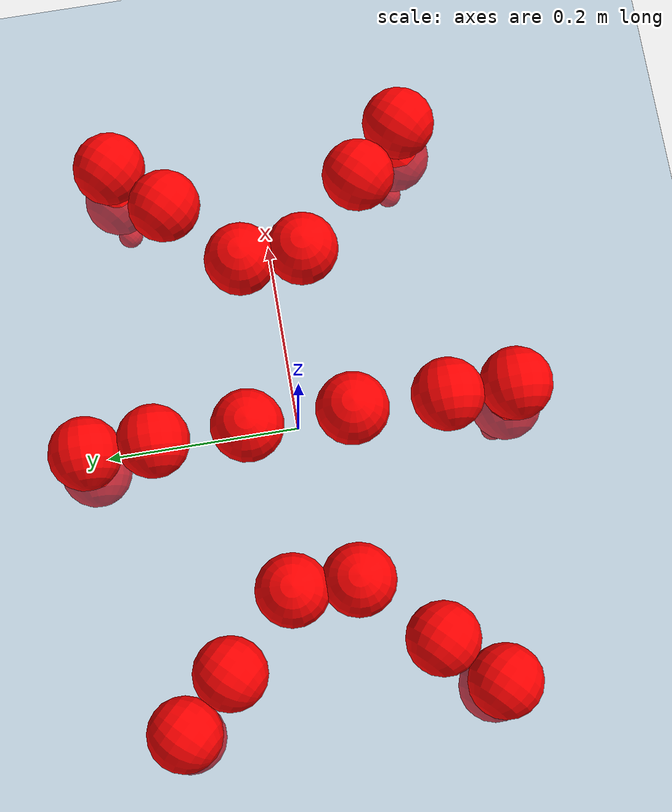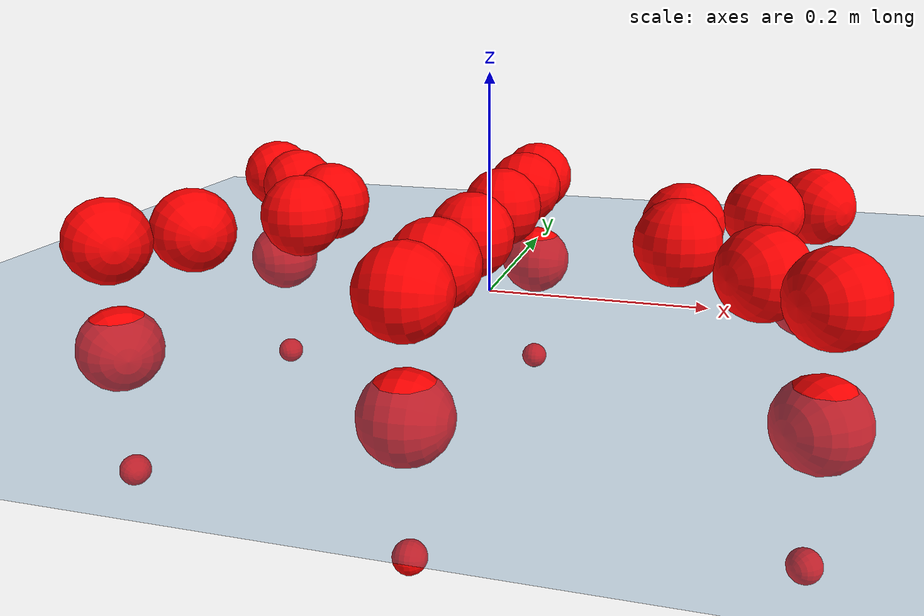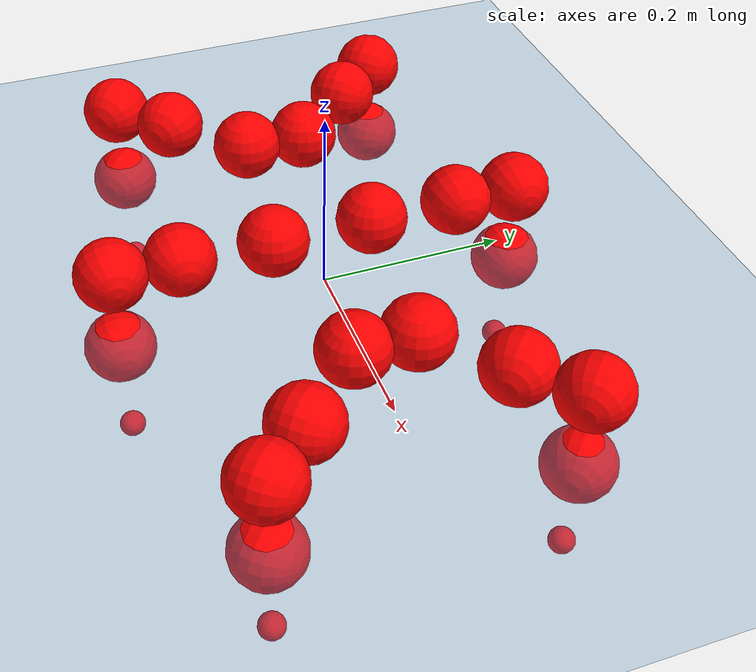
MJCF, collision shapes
<mujoco model="Golem">
  <compiler angle="radian" assetdir="assets" balanceinertia="true" inertiafromgeom="false"/>

  <option timestep="0.005" density="1.2" viscosity="2e-05"/>

  <size nkey="1"/>

  <visual>
    <quality shadowsize="8192"/>
    <map shadowclip="0.5"/>
  </visual>

  <default>
    <default class="/">
      <joint armature="0.01" damping="0.01" frictionloss="0.01"/>
      <geom contype="0" conaffinity="0" group="1" solref="-1000 -80"/>
      <site size="0.01 0.005 0.005" group="5"/>
      <general forcelimited="true" biastype="affine" gainprm="25" biasprm="0 -25 -0.5"/>
      <default class="visual">
        <geom type="mesh" group="2"/>
      </default>
      <default class="collision">
        <geom group="3"/>
      </default>
      <default class="foot">
        <geom size="0.01 0 0" condim="6" group="4" priority="1" solimp="0.015 1 0.01"/>
      </default>
      <default class="reward_collision_sphere">
        <geom group="5" rgba="1 0 0 1"/>
      </default>
    </default>
  </default>

  <asset>
    <texture type="skybox" colorspace="auto" name="//unnamed_texture_0" builtin="gradient" rgb1="0.95 0.95 0.95" rgb2="0.95 0.95 0.95" width="100" height="600"/>
    <texture type="2d" colorspace="auto" name="texplane" builtin="checker" rgb1="0.345 0.575 0.748" rgb2="0.345 0.575 0.748" markrgb="1 1 1" width="512" height="512"/>
    <material name="MatPlane" class="/" texture="texplane" texuniform="true" texrepeat="2 2" specular="0.9"/>
    <mesh name="body" class="/" file="body.stl" scale="0.001 0.001 0.001"/>
    <mesh name="coxa" class="/" file="coxa.stl" scale="0.001 0.001 0.001"/>
    <mesh name="femur" class="/" file="femur.stl" scale="0.001 0.001 0.001"/>
    <mesh name="tibia" class="/" file="tibia.stl" scale="0.001 0.001 0.001"/>
    <mesh name="tarsus" class="/" file="tarsus.stl" scale="0.001 0.001 0.001"/>
  </asset>

  <worldbody>
    <geom name="floor" class="/" size="100 100 0.125" type="plane" group="0" material="MatPlane"/>
    <light name="toplight_shadow" class="/" pos="0 0 5" dir="0.0990148 0.0990148 -0.990148" type="directional" ambient="0.04 0.04 0.04" diffuse="0.55 0.55 0.55" specular="0.12 0.12 0.12"/>
    <light name="toplight_fill" class="/" pos="0 0 5" dir="0.0990148 0.0990148 -0.990148" type="directional" castshadow="false" ambient="0.04 0.04 0.04" diffuse="0.3 0.3 0.3" specular="0.08 0.08 0.08"/>
    <body name="trunk" pos="-0.000702651 0.000496828 -0.000861317" quat="1 -2.15122e-05 1.52589e-05 0.000113249">
      <inertial pos="0.00101951 -0.000987767 -0.0050007" quat="1 -0.000277449 -0.000477459 -0.000285786" mass="3.05522" diaginertia="0.0162807 0.00124543 0.0129398"/>
      <joint name="//unnamed_joint_0" type="free"/>
      <geom name="//unnamed_geom_1" class="/" pos="0 0 0.0675543" quat="1 0 0 0" type="mesh" rgba="0.9 0.9 0.9 1" mesh="body"/>
      <site name="imu" class="/" pos="0.14093 0.00369535 0.103705" size="0.0093833"/>
      <camera name="track" class="/" pos="0 -1.31926 0" quat="0.707107 0.707107 0 0" mode="trackcom"/>
      <camera name="ego_camera" class="/" pos="0.142977 0 0.105554" quat="-0.5 -0.5 0.5 0.5"/>
      <body name="coxa_RR" pos="-0.195597 -0.0555029 0.0690105" quat="0.382681 -5.39768e-07 2.51852e-06 -0.923881">
        <inertial pos="-0.000250786 -0.000986236 0.00142233" quat="0.999989 -0.00201444 -0.00410761 -0.000893772" mass="0.165314" diaginertia="0.0161217 0.00126188 0.0131292"/>
        <joint name="coxa_joint_RR" class="/" pos="0 0 0" axis="-0.00232787 -0.00036817 -0.999997" range="-3.14491 3.13704" armature="0.00942105" damping="0.00481168" frictionloss="0.00914494"/>
        <geom name="//unnamed_geom_2" class="/" type="mesh" rgba="0.2 0.2 0.2 1" mesh="coxa"/>
        <geom name="//unnamed_geom_3" class="reward_collision_sphere" size="0.0375332" pos="-0.0329947 0 0"/>
        <body name="femur_RR" pos="0.0669148 0.00101223 -0.00117669" quat="0.499975 -0.500066 0.499953 0.500006">
          <inertial pos="9.42927e-05 -0.000160506 -8.76743e-05" quat="1 -1.66001e-05 3.74718e-05 -0.000141792" mass="0.163496" diaginertia="0.0159205 0.00123633 0.0129653"/>
          <joint name="femur_joint_RR" class="/" pos="0 0 0" axis="4.22949e-05 -0.000127983 -1" range="-3.12513 3.12067" armature="0.00965462" damping="0.00223535" frictionloss="0.0093336"/>
          <geom name="//unnamed_geom_4" class="/" type="mesh" rgba="0.9 0.9 0.9 1" mesh="femur"/>
          <geom name="//unnamed_geom_5" class="reward_collision_sphere" size="0.0375332"/>
          <body name="tibia_RR" pos="0.000287828 -0.0723216 0.00139432" quat="3.5609e-05 1 2.29983e-05 -0.00018276">
            <inertial pos="-0.000954614 -0.000105628 9.30225e-05" quat="0.999989 0.000295049 0.00384817 -0.00248107" mass="0.163895" diaginertia="0.0159507 0.00123056 0.013142"/>
            <joint name="tibia_joint_RR" class="/" pos="0 0 0" axis="-0.00228769 0.000815484 0.999997" range="-3.1209 3.11013" armature="0.00915383" damping="0.00184132" frictionloss="0.00962119"/>
            <geom name="//unnamed_geom_6" class="/" type="mesh" rgba="0.2 0.2 0.2 1" mesh="tibia"/>
            <geom name="//unnamed_geom_7" class="reward_collision_sphere" size="0.0375332"/>
            <body name="tarsus_RR" pos="0.096959 -2.01348e-05 -0.000811344" quat="1 1.58914e-05 4.46583e-05 -7.48308e-05">
              <inertial pos="0.0673142 0.00219415 -9.3953e-05" quat="0.499815 0.497646 0.503748 0.49877" mass="0.165531" diaginertia="0.0163968 0.00125841 0.0132019"/>
              <joint name="tarsus_joint_RR" class="/" pos="0 0 0" axis="-0.00112121 0.00907591 0.999958" range="-3.11822 3.14288" armature="0.00910307" damping="0.0442891" frictionloss="0.00894606"/>
              <geom name="//unnamed_geom_8" class="/" type="mesh" rgba="0.9 0.9 0.9 1" mesh="tarsus"/>
              <geom name="foot_1" class="foot" size="0.00900292" pos="0.12318 0 0" quat="0 -0.707107 0 0.707107"/>
              <geom name="//unnamed_geom_10" class="reward_collision_sphere" size="0.0375332"/>
              <geom name="//unnamed_geom_11" class="reward_collision_sphere" size="0.014075" pos="0.118231 0 0"/>
              <site name="foot_1" class="foot" pos="0.12318 0 0" quat="0 -0.707107 0 0.707107" size="0.0093833"/>
            </body>
          </body>
        </body>
      </body>
      <body name="coxa_RM" pos="-0.000879846 -0.0880424 0.0677446" quat="0.707074 4.99383e-05 1.81114e-06 -0.707139">
        <inertial pos="-0.000165121 -0.000823127 5.70137e-05" quat="0.999999 -0.00138948 3.40532e-05 0.000759408" mass="0.16669" diaginertia="0.0160895 0.00125322 0.0131075"/>
        <joint name="coxa_joint_RM" class="/" pos="0 0 0" axis="0.00308823 -0.00317745 -0.99999" range="-3.14427 3.14195" armature="0.00929868" damping="0.00961806" frictionloss="0.00878191"/>
        <geom name="//unnamed_geom_12" class="/" type="mesh" rgba="0.2 0.2 0.2 1" mesh="coxa"/>
        <geom name="//unnamed_geom_13" class="reward_collision_sphere" size="0.0375332" pos="-0.0329947 0 0"/>
        <body name="femur_RM" pos="0.0641382 -0.00139052 0.000581269" quat="0.50021 -0.499782 0.499872 0.500136">
          <inertial pos="-0.000357682 0.000620944 -0.000309575" quat="1 -0.000320479 -0.000547399 -2.5563e-05" mass="0.164289" diaginertia="0.0159144 0.00125048 0.0130149"/>
          <joint name="femur_joint_RM" class="/" pos="0 0 0" axis="2.36039e-06 -0.000878899 -1" range="-3.1375 3.15692" armature="0.00920524" damping="0.000577728" frictionloss="0.00952449"/>
          <geom name="//unnamed_geom_14" class="/" type="mesh" rgba="0.9 0.9 0.9 1" mesh="femur"/>
          <geom name="//unnamed_geom_15" class="reward_collision_sphere" size="0.0375332"/>
          <body name="tibia_RM" pos="0.00035819 -0.0698092 -2.98246e-05" quat="-1.20394e-05 1 2.55989e-05 -1.55266e-05">
            <inertial pos="-0.0010341 -0.00156297 -0.000681319" quat="0.999985 -0.00222088 -0.0049146 0.000594749" mass="0.165351" diaginertia="0.0161698 0.00124916 0.012957"/>
            <joint name="tibia_joint_RM" class="/" pos="0 0 0" axis="-0.00090785 0.00122275 0.999999" range="-3.14343 3.11945" armature="0.00895169" damping="0.00798504" frictionloss="0.00896795"/>
            <geom name="//unnamed_geom_16" class="/" type="mesh" rgba="0.2 0.2 0.2 1" mesh="tibia"/>
            <geom name="//unnamed_geom_17" class="reward_collision_sphere" size="0.0375332"/>
            <body name="tarsus_RM" pos="0.0971017 0.00104154 0.000385277" quat="1 -1.54397e-05 5.7899e-06 -1.20934e-05">
              <inertial pos="0.0663681 -0.000388261 -0.000204891" quat="0.499486 0.500761 0.500714 0.499037" mass="0.163766" diaginertia="0.0157982 0.00123033 0.0130107"/>
              <joint name="tarsus_joint_RM" class="/" pos="0 0 0" axis="-0.000375415 0.00150126 0.999999" range="-3.13791 3.145" armature="0.0091108" damping="0.00746076" frictionloss="0.00957452"/>
              <geom name="//unnamed_geom_18" class="/" type="mesh" rgba="0.9 0.9 0.9 1" mesh="tarsus"/>
              <geom name="foot_2" class="foot" size="0.00956456" pos="0.12318 0 0" quat="0 -0.707107 0 0.707107"/>
              <geom name="//unnamed_geom_20" class="reward_collision_sphere" size="0.0375332"/>
              <geom name="//unnamed_geom_21" class="reward_collision_sphere" size="0.014075" pos="0.118231 0 0"/>
              <site name="foot_2" class="foot" pos="0.12318 0 0" quat="0 -0.707107 0 0.707107" size="0.0093833"/>
            </body>
          </body>
        </body>
      </body>
      <body name="coxa_RF" pos="0.19648 -0.0558542 0.0674658" quat="0.923943 -0.000187371 0.000145568 -0.38253">
        <inertial pos="0.000464928 -0.000131107 -5.52616e-05" quat="0.999997 -0.000770943 0.00125593 -0.00194606" mass="0.165383" diaginertia="0.0162769 0.00125482 0.0130503"/>
        <joint name="coxa_joint_RF" class="/" pos="0 0 0" axis="-0.000652354 0.00066199 -1" stiffness="0.00049919" range="-3.12172 3.12915" armature="0.00984146" damping="0.00778106" frictionloss="0.00927841"/>
        <geom name="//unnamed_geom_22" class="/" type="mesh" rgba="0.2 0.2 0.2 1" mesh="coxa"/>
        <geom name="//unnamed_geom_23" class="reward_collision_sphere" size="0.0375332" pos="-0.0329947 0 0"/>
        <body name="femur_RF" pos="0.0661748 -0.000331323 -0.00132062" quat="0.500049 -0.499982 0.499904 0.500065">
          <inertial pos="-0.000328149 -0.00064987 0.000322106" quat="1 -0.000452736 0.000655742 -7.94341e-05" mass="0.165441" diaginertia="0.0161661 0.00126126 0.0130789"/>
          <joint name="femur_joint_RF" class="/" pos="0 0 0" axis="-0.00048734 0.000806387 -1" range="-3.13399 3.13391" armature="0.00906104" damping="0" frictionloss="0.00909554"/>
          <geom name="//unnamed_geom_24" class="/" type="mesh" rgba="0.9 0.9 0.9 1" mesh="femur"/>
          <geom name="//unnamed_geom_25" class="reward_collision_sphere" size="0.0375332"/>
          <body name="tibia_RF" pos="-0.000433485 -0.0706669 -0.00122744" quat="2.01582e-05 1 1.86187e-05 0.000123584">
            <inertial pos="-0.000488186 -0.000376459 -0.000521995" quat="1 -0.000799625 0.00021277 0.000446818" mass="0.165498" diaginertia="0.0164007 0.00126596 0.013103"/>
            <joint name="tibia_joint_RF" class="/" pos="0 0 0" axis="-3.50053e-05 -0.000588166 1" range="-3.13138 3.13201" armature="0.00903316" damping="0.0131487" frictionloss="0.00944242"/>
            <geom name="//unnamed_geom_26" class="/" type="mesh" rgba="0.2 0.2 0.2 1" mesh="tibia"/>
            <geom name="//unnamed_geom_27" class="reward_collision_sphere" size="0.0375332"/>
            <body name="tarsus_RF" pos="0.0957513 0.000379182 0.00118894" quat="1 -0.000352946 -8.17922e-05 -0.000261639">
              <inertial pos="0.0660336 -0.000690816 -0.0001895" quat="0.496487 0.49937 0.505268 0.498834" mass="0.165815" diaginertia="0.0162396 0.00123168 0.0130972"/>
              <joint name="tarsus_joint_RF" class="/" pos="0 0 0" axis="0.000709911 -0.00133988 0.999999" range="-3.12285 3.13105" armature="0.0100762" damping="0" frictionloss="0.0093298"/>
              <geom name="//unnamed_geom_28" class="/" type="mesh" rgba="0.9 0.9 0.9 1" mesh="tarsus"/>
              <geom name="foot_3" class="foot" size="0.00953248" pos="0.12318 0 0" quat="0 -0.707107 0 0.707107"/>
              <geom name="//unnamed_geom_30" class="reward_collision_sphere" size="0.0375332"/>
              <geom name="//unnamed_geom_31" class="reward_collision_sphere" size="0.014075" pos="0.118231 0 0"/>
              <site name="foot_3" class="foot" pos="0.12318 0 0" quat="0 -0.707107 0 0.707107" size="0.0093833"/>
            </body>
          </body>
        </body>
      </body>
      <body name="coxa_LR" pos="-0.195122 0.0573914 0.0687389" quat="0.382442 0.000255491 -0.00025465 0.923979">
        <inertial pos="0.000422418 -0.00137405 -8.37111e-05" quat="1 0.000349149 0.000712317 -0.000246726" mass="0.163803" diaginertia="0.0159908 0.00124481 0.0128893"/>
        <joint name="coxa_joint_LR" class="/" pos="0 0 0" axis="0.000178364 0.00354153 -0.999994" range="-3.12132 3.15544" armature="0.0091077" damping="0.00755163" frictionloss="0.00914437"/>
        <geom name="//unnamed_geom_32" class="/" type="mesh" rgba="0.2 0.2 0.2 1" mesh="coxa"/>
        <geom name="//unnamed_geom_33" class="reward_collision_sphere" size="0.0375332" pos="-0.0329947 0 0"/>
        <body name="femur_LR" pos="0.0681038 -0.00174693 -0.0013474" quat="0.499975 -0.499805 0.49995 0.50027">
          <inertial pos="-0.000463925 6.33342e-05 6.89169e-05" quat="0.999991 0.000233422 -0.000331902 0.00417035" mass="0.16598" diaginertia="0.0159709 0.00123985 0.0132413"/>
          <joint name="femur_joint_LR" class="/" pos="0 0 0" axis="-0.00252545 0.001535 0.999996" range="-3.11379 3.14205" armature="0.00901189" damping="0.00760761" frictionloss="0.00918443"/>
          <geom name="//unnamed_geom_34" class="/" type="mesh" rgba="0.9 0.9 0.9 1" mesh="femur"/>
          <geom name="//unnamed_geom_35" class="reward_collision_sphere" size="0.0375332"/>
          <body name="tibia_LR" pos="0.000851695 -0.0723357 -0.00139909" quat="0.000108544 1 -0.000363225 0.000419918">
            <inertial pos="-0.000375568 -0.000896067 -0.000105014" quat="0.999991 -0.00112655 -0.00149736 -0.00392795" mass="0.164506" diaginertia="0.0158953 0.00123058 0.0130348"/>
            <joint name="tibia_joint_LR" class="/" pos="0 0 0" axis="-0.000883719 0.00157235 -0.999998" range="-3.13625 3.12093" armature="0.00976954" damping="0" frictionloss="0.00900139"/>
            <geom name="//unnamed_geom_36" class="/" type="mesh" rgba="0.2 0.2 0.2 1" mesh="tibia"/>
            <geom name="//unnamed_geom_37" class="reward_collision_sphere" size="0.0375332"/>
            <body name="tarsus_LR" pos="0.0975841 0.00100344 0.000654901" quat="1 1.12812e-05 -7.29168e-05 3.67304e-05">
              <inertial pos="0.0658105 0.000171505 -6.53099e-05" quat="0.497403 0.502256 0.499155 0.501173" mass="0.162388" diaginertia="0.0159845 0.00123918 0.0129771"/>
              <joint name="tarsus_joint_LR" class="/" pos="0 0 0" axis="0.00272916 -0.00152216 -0.999995" range="-3.1444 3.13869" armature="0.00931953" damping="0.0283465" frictionloss="0.00916869"/>
              <geom name="//unnamed_geom_38" class="/" type="mesh" rgba="0.9 0.9 0.9 1" mesh="tarsus"/>
              <geom name="foot_4" class="foot" size="0.00941261" pos="0.12318 0 0" quat="0.707107 0 -0.707107 0"/>
              <geom name="//unnamed_geom_40" class="reward_collision_sphere" size="0.0375332"/>
              <geom name="//unnamed_geom_41" class="reward_collision_sphere" size="0.014075" pos="0.118231 0 0"/>
              <site name="foot_4" class="foot" pos="0.12318 0 0" quat="0.707107 0 -0.707107 0" size="0.0093833"/>
            </body>
          </body>
        </body>
      </body>
      <body name="coxa_LM" pos="-0.00139494 0.0850051 0.0690836" quat="0.706701 7.80377e-05 -0.000187135 0.707512">
        <inertial pos="0.000294372 0.000151335 0.00138244" quat="1 0.000162408 -0.000169153 -0.000149889" mass="0.166651" diaginertia="0.016131 0.00123897 0.0132479"/>
        <joint name="coxa_joint_LM" class="/" pos="0 0 0" axis="0.00033726 -0.000671589 -1" range="-3.13904 3.14029" armature="0.00969968" damping="0.00473636" frictionloss="0.009736"/>
        <geom name="//unnamed_geom_42" class="/" type="mesh" rgba="0.2 0.2 0.2 1" mesh="coxa"/>
        <geom name="//unnamed_geom_43" class="reward_collision_sphere" size="0.0375332" pos="-0.0329947 0 0"/>
        <body name="femur_LM" pos="0.0624129 0.000341071 -0.000173583" quat="0.500006 -0.499897 0.500082 0.500015">
          <inertial pos="-0.000218889 -0.000978741 0.000475113" quat="1 5.88109e-05 0.000402394 -0.000372728" mass="0.165103" diaginertia="0.0159131 0.00124971 0.0132217"/>
          <joint name="femur_joint_LM" class="/" pos="0 0 0" axis="-0.00599808 -0.00109845 0.999981" stiffness="0.00143838" range="-3.12956 3.14456" armature="0.00892992" damping="0.00605748" frictionloss="0.00906863"/>
          <geom name="//unnamed_geom_44" class="/" type="mesh" rgba="0.9 0.9 0.9 1" mesh="femur"/>
          <geom name="//unnamed_geom_45" class="reward_collision_sphere" size="0.0375332"/>
          <body name="tibia_LM" pos="0.000831876 -0.0687652 0.00131644" quat="-3.95114e-05 1 -4.56316e-05 3.29725e-05">
            <inertial pos="0.000865745 -0.00156773 0.00127512" quat="0.999979 -0.00440175 0.00441548 0.00190907" mass="0.163868" diaginertia="0.0162339 0.00123727 0.0131503"/>
            <joint name="tibia_joint_LM" class="/" pos="0 0 0" axis="-0.000309014 -0.00249417 -0.999997" range="-3.13539 3.12928" armature="0.00922415" damping="0.00361346" frictionloss="0.00933345"/>
            <geom name="//unnamed_geom_46" class="/" type="mesh" rgba="0.2 0.2 0.2 1" mesh="tibia"/>
            <geom name="//unnamed_geom_47" class="reward_collision_sphere" size="0.0375332"/>
            <body name="tarsus_LM" pos="0.0967828 -0.000174723 -0.00051153" quat="1 0.000201139 1.04039e-05 0.000152346">
              <inertial pos="0.0674631 0.000122166 -0.000106479" quat="0.503461 0.498991 0.496994 0.500531" mass="0.166699" diaginertia="0.0161521 0.00126097 0.013316"/>
              <joint name="tarsus_joint_LM" class="/" pos="0 0 0" axis="0.000742076 0.000663681 -1" range="-3.13365 3.13142" armature="0.00968688" damping="0" frictionloss="0.00939717"/>
              <geom name="//unnamed_geom_48" class="/" type="mesh" rgba="0.9 0.9 0.9 1" mesh="tarsus"/>
              <geom name="foot_5" class="foot" size="0.00958316" pos="0.12318 0 0" quat="0.707107 0 -0.707107 0"/>
              <geom name="//unnamed_geom_50" class="reward_collision_sphere" size="0.0375332"/>
              <geom name="//unnamed_geom_51" class="reward_collision_sphere" size="0.014075" pos="0.118231 0 0"/>
              <site name="foot_5" class="foot" pos="0.12318 0 0" quat="0.707107 0 -0.707107 0" size="0.0093833"/>
            </body>
          </body>
        </body>
      </body>
      <body name="coxa_LF" pos="0.195698 0.0549928 0.0677325" quat="0.9238 -3.74631e-05 0.00016195 0.382876">
        <inertial pos="-0.000148555 -6.68848e-05 -0.000505182" quat="0.999979 -0.00397461 0.0033239 -0.00382749" mass="0.168179" diaginertia="0.0163767 0.00126771 0.0129989"/>
        <joint name="coxa_joint_LF" class="/" pos="0 0 0" axis="0.000172494 -0.000636236 -1" range="-3.13869 3.13822" armature="0.0093287" damping="0.00378675" frictionloss="0.00960266"/>
        <geom name="//unnamed_geom_52" class="/" type="mesh" rgba="0.2 0.2 0.2 1" mesh="coxa"/>
        <geom name="//unnamed_geom_53" class="reward_collision_sphere" size="0.0375332" pos="-0.0329947 0 0"/>
        <body name="femur_LF" pos="0.0650874 -0.000813209 -0.00130436" quat="0.499947 -0.499969 0.500045 0.50004">
          <inertial pos="0.000449098 0.000576178 0.000745094" quat="0.999997 -0.00122809 -0.00225782 -4.00037e-05" mass="0.163828" diaginertia="0.0160889 0.00124625 0.012989"/>
          <joint name="femur_joint_LF" class="/" pos="0 0 0" axis="0.00205377 0.00699992 0.999973" range="-3.14196 3.16557" armature="0.00907858" damping="0" frictionloss="0.0092676"/>
          <geom name="//unnamed_geom_54" class="/" type="mesh" rgba="0.9 0.9 0.9 1" mesh="femur"/>
          <geom name="//unnamed_geom_55" class="reward_collision_sphere" size="0.0375332"/>
          <body name="tibia_LF" pos="0.00106409 -0.0707006 0.000454047" quat="-1.90259e-05 1 0.000226925 0.000147623">
            <inertial pos="-0.000301996 -8.31846e-05 0.000164046" quat="1 0.000400634 0.000405467 -0.000397307" mass="0.165308" diaginertia="0.0161378 0.00124293 0.0130703"/>
            <joint name="tibia_joint_LF" class="/" pos="0 0 0" axis="-0.00125633 -0.00345391 -0.999993" range="-3.12542 3.12596" armature="0.00906013" damping="0.00295928" frictionloss="0.00924623"/>
            <geom name="//unnamed_geom_56" class="/" type="mesh" rgba="0.2 0.2 0.2 1" mesh="tibia"/>
            <geom name="//unnamed_geom_57" class="reward_collision_sphere" size="0.0375332"/>
            <body name="tarsus_LF" pos="0.0967791 -0.000170176 0.000750473" quat="1 0.000199317 -0.000359266 -7.42997e-05">
              <inertial pos="0.0669874 -0.000744016 -0.000390084" quat="0.499983 0.500127 0.499893 0.499997" mass="0.164504" diaginertia="0.0161895 0.00125591 0.0130265"/>
              <joint name="tarsus_joint_LF" class="/" pos="0 0 0" axis="-8.18053e-05 0.00683597 -0.999977" stiffness="0.0254565" range="-3.15106 3.15396" armature="0.00930772" damping="0.00246294" frictionloss="0.0094522"/>
              <geom name="//unnamed_geom_58" class="/" type="mesh" rgba="0.9 0.9 0.9 1" mesh="tarsus"/>
              <geom name="foot_6" class="foot" size="0.00919316" pos="0.12318 0 0" quat="0.707107 0 -0.707107 0"/>
              <geom name="//unnamed_geom_60" class="reward_collision_sphere" size="0.0375332"/>
              <geom name="//unnamed_geom_61" class="reward_collision_sphere" size="0.014075" pos="0.118231 0 0"/>
              <site name="foot_6" class="foot" pos="0.12318 0 0" quat="0.707107 0 -0.707107 0" size="0.0093833"/>
            </body>
          </body>
        </body>
      </body>
    </body>
  </worldbody>

  <contact>
    <pair class="/" geom1="floor" geom2="foot_1" name="//unnamed_contact_0"/>
    <pair class="/" geom1="floor" geom2="foot_2" name="//unnamed_contact_1"/>
    <pair class="/" geom1="floor" geom2="foot_3" name="//unnamed_contact_2"/>
    <pair class="/" geom1="floor" geom2="foot_4" name="//unnamed_contact_3"/>
    <pair class="/" geom1="floor" geom2="foot_5" name="//unnamed_contact_4"/>
    <pair class="/" geom1="floor" geom2="foot_6" name="//unnamed_contact_5"/>
  </contact>

  <actuator>
    <general name="coxa_joint_RR" class="/" joint="coxa_joint_RR" forcerange="-6.64795 6.64795" gainprm="22.8113" biasprm="0 -22.8113 -0.480626"/>
    <general name="femur_joint_RR" class="/" joint="femur_joint_RR" forcerange="-7.09079 7.09079" gainprm="22.8113" biasprm="0 -22.8113 -0.480626"/>
    <general name="tibia_joint_RR" class="/" joint="tibia_joint_RR" forcerange="-6.59946 6.59946" gainprm="22.8113" biasprm="0 -22.8113 -0.480626"/>
    <general name="tarsus_joint_RR" class="/" joint="tarsus_joint_RR" forcerange="-7.04786 7.04786" gainprm="22.8113" biasprm="0 -22.8113 -0.480626"/>
    <general name="coxa_joint_RM" class="/" joint="coxa_joint_RM" forcerange="-6.86107 6.86107" gainprm="22.8113" biasprm="0 -22.8113 -0.480626"/>
    <general name="femur_joint_RM" class="/" joint="femur_joint_RM" forcerange="-6.78833 6.78833" gainprm="22.8113" biasprm="0 -22.8113 -0.480626"/>
    <general name="tibia_joint_RM" class="/" joint="tibia_joint_RM" forcerange="-6.51869 6.51869" gainprm="22.8113" biasprm="0 -22.8113 -0.480626"/>
    <general name="tarsus_joint_RM" class="/" joint="tarsus_joint_RM" forcerange="-6.90469 6.90469" gainprm="22.8113" biasprm="0 -22.8113 -0.480626"/>
    <general name="coxa_joint_RF" class="/" joint="coxa_joint_RF" forcerange="-6.898 6.898" gainprm="22.8113" biasprm="0 -22.8113 -0.480626"/>
    <general name="femur_joint_RF" class="/" joint="femur_joint_RF" forcerange="-7.18701 7.18701" gainprm="22.8113" biasprm="0 -22.8113 -0.480626"/>
    <general name="tibia_joint_RF" class="/" joint="tibia_joint_RF" forcerange="-6.61344 6.61344" gainprm="22.8113" biasprm="0 -22.8113 -0.480626"/>
    <general name="tarsus_joint_RF" class="/" joint="tarsus_joint_RF" forcerange="-7.1767 7.1767" gainprm="22.8113" biasprm="0 -22.8113 -0.480626"/>
    <general name="coxa_joint_LR" class="/" joint="coxa_joint_LR" forcerange="-6.83837 6.83837" gainprm="22.8113" biasprm="0 -22.8113 -0.480626"/>
    <general name="femur_joint_LR" class="/" joint="femur_joint_LR" forcerange="-6.68713 6.68713" gainprm="22.8113" biasprm="0 -22.8113 -0.480626"/>
    <general name="tibia_joint_LR" class="/" joint="tibia_joint_LR" forcerange="-6.62812 6.62812" gainprm="22.8113" biasprm="0 -22.8113 -0.480626"/>
    <general name="tarsus_joint_LR" class="/" joint="tarsus_joint_LR" forcerange="-6.80455 6.80455" gainprm="22.8113" biasprm="0 -22.8113 -0.480626"/>
    <general name="coxa_joint_LM" class="/" joint="coxa_joint_LM" forcerange="-6.61515 6.61515" gainprm="22.8113" biasprm="0 -22.8113 -0.480626"/>
    <general name="femur_joint_LM" class="/" joint="femur_joint_LM" forcerange="-6.84496 6.84496" gainprm="22.8113" biasprm="0 -22.8113 -0.480626"/>
    <general name="tibia_joint_LM" class="/" joint="tibia_joint_LM" forcerange="-6.66306 6.66306" gainprm="22.8113" biasprm="0 -22.8113 -0.480626"/>
    <general name="tarsus_joint_LM" class="/" joint="tarsus_joint_LM" forcerange="-6.99571 6.99571" gainprm="22.8113" biasprm="0 -22.8113 -0.480626"/>
    <general name="coxa_joint_LF" class="/" joint="coxa_joint_LF" forcerange="-6.71711 6.71711" gainprm="22.8113" biasprm="0 -22.8113 -0.480626"/>
    <general name="femur_joint_LF" class="/" joint="femur_joint_LF" forcerange="-6.79874 6.79874" gainprm="22.8113" biasprm="0 -22.8113 -0.480626"/>
    <general name="tibia_joint_LF" class="/" joint="tibia_joint_LF" forcerange="-6.80609 6.80609" gainprm="22.8113" biasprm="0 -22.8113 -0.480626"/>
    <general name="tarsus_joint_LF" class="/" joint="tarsus_joint_LF" forcerange="-6.83407 6.83407" gainprm="22.8113" biasprm="0 -22.8113 -0.480626"/>
  </actuator>

  <sensor>
    <gyro site="imu" name="imu_angular_velocity"/>
    <velocimeter site="imu" name="imu_linear_velocity"/>
    <framelinvel objtype="site" objname="foot_1" name="foot_1_global_linear_velocity"/>
    <framelinvel objtype="site" objname="foot_2" name="foot_2_global_linear_velocity"/>
    <framelinvel objtype="site" objname="foot_3" name="foot_3_global_linear_velocity"/>
    <framelinvel objtype="site" objname="foot_4" name="foot_4_global_linear_velocity"/>
    <framelinvel objtype="site" objname="foot_5" name="foot_5_global_linear_velocity"/>
    <framelinvel objtype="site" objname="foot_6" name="foot_6_global_linear_velocity"/>
  </sensor>

  <keyframe>
    <key name="home" qpos="0 0 0.1457 1 0 0 0 0 0 0 0 0 0 0 0 0 0 0 0 0 0 0 0 0 0 0 0 0 0 0 0"/>
  </keyframe>
</mujoco>
